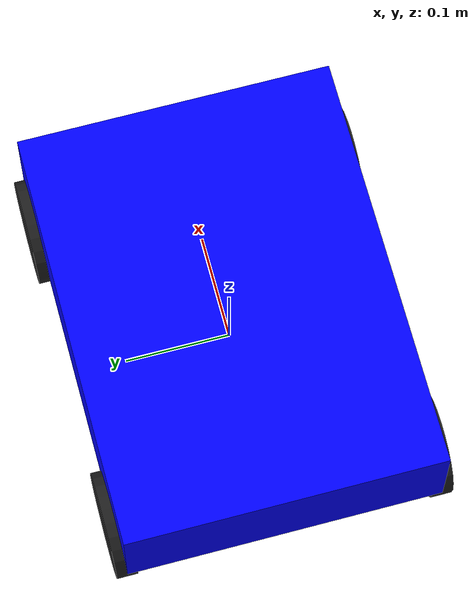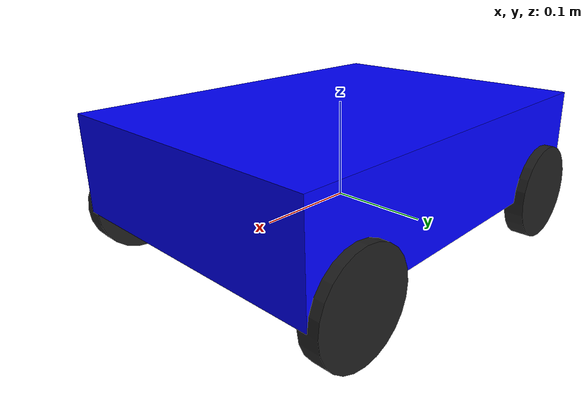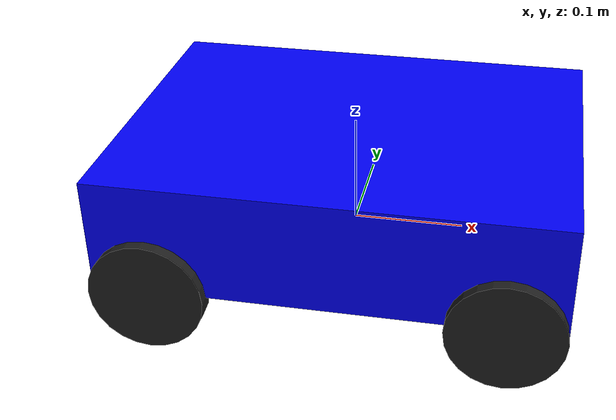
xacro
<?xml version="1.0"?>
<robot xmlns:xacro="http://ros.org/wiki/xacro" name="four_wheel_car">

  <!-- Properties -->
  <xacro:property name="wheel_radius" value="0.05"/>
  <xacro:property name="wheel_width" value="0.02"/>
  <xacro:property name="base_length" value="0.4"/>
  <xacro:property name="base_width" value="0.3"/>
  <xacro:property name="base_height" value="0.1"/>
  <xacro:property name="wheel_separation_length" value="0.3"/>

  <!-- Add a dummy base_footprint link to avoid KDL warning -->
  <link name="base_footprint">
    <!-- This link has no physical representation, it's just for KDL -->
  </link>

  <!-- Connect base_footprint to base_link -->
  <joint name="base_footprint_joint" type="fixed">
    <parent link="base_footprint"/>
    <child link="base_link"/>
    <origin xyz="0 0 ${wheel_radius}" rpy="0 0 0"/>
  </joint>

  <!-- Base Link -->
  <link name="base_link">
    <visual>
      <geometry>
        <box size="${base_length} ${base_width} ${base_height}"/>
      </geometry>
      <material name="blue">
        <color rgba="0 0 1 1"/>
      </material>
    </visual>
    <collision>
      <geometry>
        <box size="${base_length} ${base_width} ${base_height}"/>
      </geometry>
    </collision>
    <inertial>
      <mass value="2.0"/>
      <inertia ixx="0.01" iyy="0.01" izz="0.01" ixy="0" ixz="0" iyz="0"/>
    </inertial>
  </link>

  <!-- Wheel Definitions -->
  <xacro:macro name="wheel" params="wheel_name">
    <link name="${wheel_name}">
      <visual>
        <geometry>
          <cylinder radius="${wheel_radius}" length="${wheel_width}"/>
        </geometry>
        <origin xyz="0 0 0" rpy="1.5708 0 0"/>
      </visual>
      <collision>
        <geometry>
          <cylinder radius="${wheel_radius}" length="${wheel_width}"/>
        </geometry>
        <origin xyz="0 0 0" rpy="1.5708 0 0"/>
      </collision>
      <inertial>
        <mass value="0.5"/>
        <inertia ixx="0.001" iyy="0.001" izz="0.001" ixy="0" ixz="0" iyz="0"/>
      </inertial>
    </link>
  </xacro:macro>

  <xacro:wheel wheel_name="rear_left_wheel"/>
  <xacro:wheel wheel_name="rear_right_wheel"/>
  <xacro:wheel wheel_name="front_left_wheel"/>
  <xacro:wheel wheel_name="front_right_wheel"/>

  <!-- Joints -->
  <xacro:macro name="wheel_joint" params="parent_link child_link joint_name x y z">
    <joint name="${joint_name}" type="continuous">
      <parent link="${parent_link}"/>
      <child link="${child_link}"/>
      <origin xyz="${x} ${y} ${z}" rpy="0 0 0"/>
      <axis xyz="0 1 0"/>
    </joint>
  </xacro:macro>

  <xacro:wheel_joint parent_link="base_link" child_link="rear_left_wheel" joint_name="rear_left_wheel_joint" x="-0.15" y="0.15" z="-0.05"/>
  <xacro:wheel_joint parent_link="base_link" child_link="rear_right_wheel" joint_name="rear_right_wheel_joint" x="-0.15" y="-0.15" z="-0.05"/>
  <xacro:wheel_joint parent_link="base_link" child_link="front_left_wheel" joint_name="front_left_wheel_joint" x="0.15" y="0.15" z="-0.05"/>
  <xacro:wheel_joint parent_link="base_link" child_link="front_right_wheel" joint_name="front_right_wheel_joint" x="0.15" y="-0.15" z="-0.05"/>

  <!-- Gazebo material colors -->
  <gazebo reference="base_link">
    <material>Gazebo/Blue</material>
  </gazebo>

  <gazebo reference="rear_left_wheel">
    <material>Gazebo/Black</material>
  </gazebo>

  <gazebo reference="rear_right_wheel">
    <material>Gazebo/Black</material>
  </gazebo>

  <gazebo reference="front_left_wheel">
    <material>Gazebo/Black</material>
  </gazebo>

  <gazebo reference="front_right_wheel">
    <material>Gazebo/Black</material>
  </gazebo>

  <!-- Diff Drive Plugin - UPDATED for ROS2 -->
  <gazebo>
    <plugin name="diff_drive_controller" filename="libgazebo_ros_diff_drive.so">
      <ros>
        <remapping>cmd_vel:=/cmd_vel</remapping>
      </ros>
      <left_joint>rear_left_wheel_joint</left_joint>
      <right_joint>rear_right_wheel_joint</right_joint>
      <wheel_separation>0.3</wheel_separation>
      <wheel_diameter>0.1</wheel_diameter>
      <max_wheel_torque>10</max_wheel_torque>
      <odometry_frame>odom</odometry_frame>
      <robot_base_frame>base_link</robot_base_frame>
    </plugin>
  </gazebo>

</robot>
